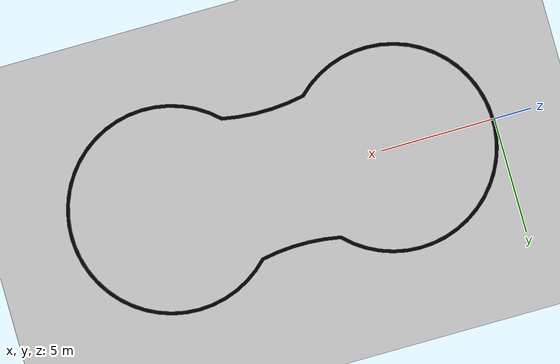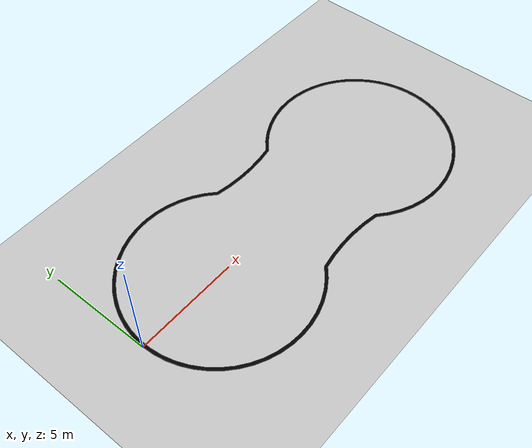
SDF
<?xml version="1.0" ?>

<sdf version="1.6">
  <world name="empty">

    <physics name="1ms" type="ignored">
      <max_step_size>0.001</max_step_size>
      <real_time_factor>1.0</real_time_factor>
    </physics>

    <plugin
      filename="ignition-gazebo-physics-system"
      name="gz::sim::systems::Physics">
    </plugin>

    <plugin
      filename="ignition-gazebo-user-commands-system"
      name="gz::sim::systems::UserCommands">
    </plugin>

    <plugin
      filename="ignition-gazebo-scene-broadcaster-system"
      name="gz::sim::systems::SceneBroadcaster">
    </plugin>

    <plugin
      filename="ignition-gazebo-contact-system"
      name="gz::sim::systems::Contact">
    </plugin>

    <light type="directional" name="sun">
      <cast_shadows>true</cast_shadows>
      <pose>0 0 10 0 0 0</pose>
      <diffuse>0.8 0.8 0.8 1</diffuse>
      <specular>0.2 0.2 0.2 1</specular>
      <attenuation>
        <range>1000</range>
        <constant>0.9</constant>
        <linear>0.01</linear>
        <quadratic>0.001</quadratic>
      </attenuation>
      <direction>-0.5 0.1 -0.9</direction>
    </light>

    <model name="ground_plane">
      <static>true</static>
      <link name="link">
        <collision name="collision">
          <geometry>
            <plane>
              <normal>0 0 1</normal>
              <size>100 100</size>
            </plane>
          </geometry>
        </collision>
        <visual name="visual">
          <geometry>
            <plane>
              <normal>0 0 1</normal>
              <size>100 100</size>
            </plane>
          </geometry>
          <material>
            <ambient>0.8 0.8 0.8 1</ambient>
            <diffuse>0.8 0.8 0.8 1</diffuse>
            <specular>0.8 0.8 0.8 1</specular>
          </material>
        </visual>
      </link>
    </model>

    <include>
      <uri>models://track1</uri>
      <name>track1</name>
    </include>

  </world>
</sdf>

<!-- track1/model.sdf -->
<sdf version="1.6">
  <model name="yolwzemin">
    <!-- Modelin tümüne uygulanacak pose: x y z roll pitch yaw -->
    <pose>0 -4.5 0 1.57 0 1.57</pose>

    <!-- Model statik olsun, böylece fizik etkileşimine girmesin -->
    <static>true</static>
    <link name="link">

      <!-- Collision bilgisi mevcut, ancak çarpışmalar devre dışı bırakılıyor -->
      <collision name="collision">
      </collision>

      <!-- Görsel Tanımlama -->
      <visual name="visual">
        <geometry>
          <mesh>
            <uri>meshes/track.STL</uri>
            <scale>0.003 0.003 0.003</scale>
          </mesh>
        </geometry>
        <material>
          <ambient>0 0 0 1</ambient>
          <diffuse>0 0 0 1</diffuse>
          <specular>0.1 0.1 0.1 1</specular>
          <emissive>0 0 0 1</emissive>
        </material>
      </visual>

      <!-- Damping değerleri -->
      <velocity_decay>
        <linear>0.2</linear>
        <angular>0.2</angular>
      </velocity_decay>

      <!-- İnertial bilgileri -->
      <inertial>
        <mass>0.5</mass>
        <inertia>
          <ixx>0.005</ixx>
          <ixy>0</ixy>
          <ixz>0</ixz>
          <iyy>0.005</iyy>
          <iyz>0</iyz>
          <izz>0.005</izz>
        </inertia>
        <pose>0 0 0 0 0 0</pose>
      </inertial>

    </link>
  </model>
</sdf>
